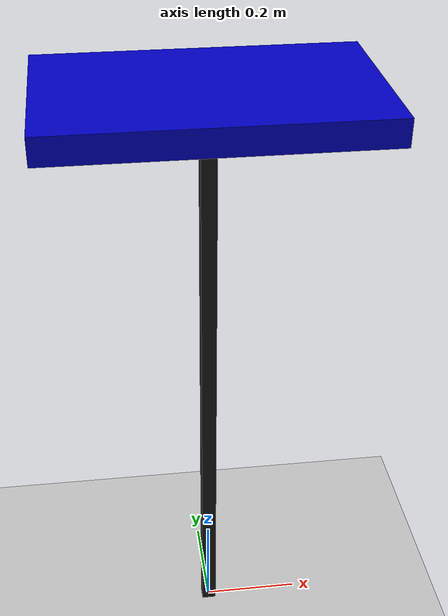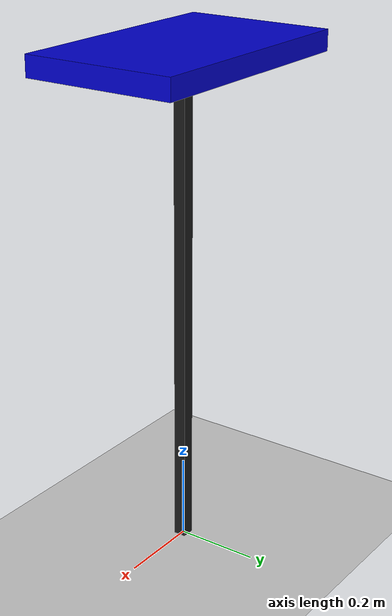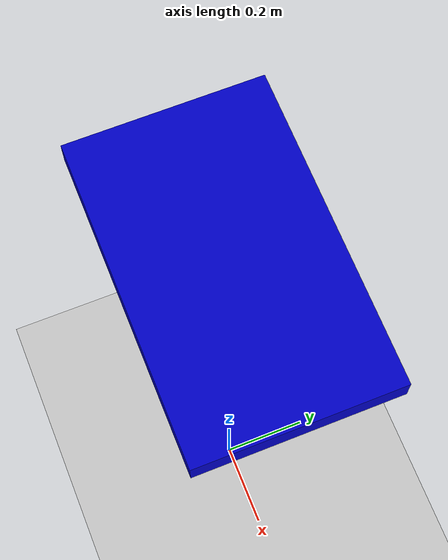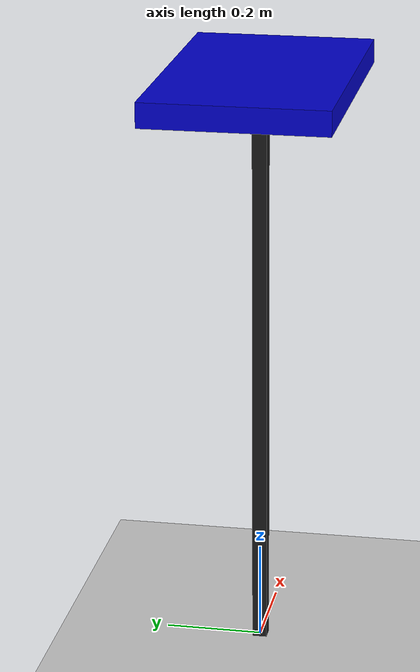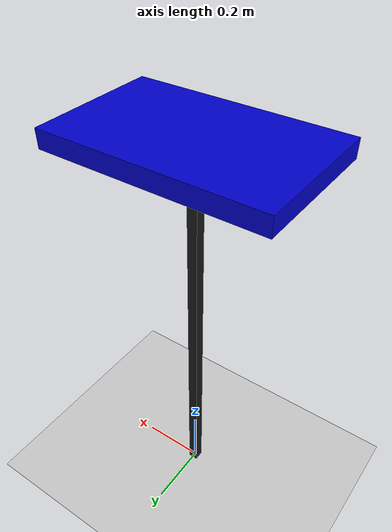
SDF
<?xml version="1.0" ?>
<!-- This is a simple rectangular model to test the buoyancy plugin -->
<sdf version="1.7">
    <world name="car_world">
        <scene>
            <!-- For turquoise ambient -->
            <ambient>0.0 1.0 1.0</ambient>
            <background>0.0 0.7 0.8</background>
        </scene>

        <physics name="1ms" type="ode">
            <max_step_size>0.001</max_step_size>
            <real_time_factor>1.0</real_time_factor>
        </physics>
        <plugin
            filename="libignition-gazebo-physics-system"
            name="ignition::gazebo::systems::Physics">
        </plugin>
        <plugin
            filename="libignition-gazebo-user-commands-system"
            name="ignition::gazebo::systems::UserCommands">
        </plugin>
        <plugin
            filename="libignition-gazebo-scene-broadcaster-system"
            name="ignition::gazebo::systems::SceneBroadcaster">
        </plugin>

        <light type="directional" name="sun">
            <cast_shadows>true</cast_shadows>
            <pose>0 0 10 0 0 0</pose>
            <diffuse>0.8 0.8 0.8 1</diffuse>
            <specular>0.2 0.2 0.2 1</specular>
            <attenuation>
                <range>1000</range>
                <constant>0.9</constant>
                <linear>0.01</linear>
                <quadratic>0.001</quadratic>
            </attenuation>
            <direction>-0.5 0.1 -0.9</direction>
        </light>

        <model name="ground_plane">
            <static>true</static>
            <link name="link">
                <collision name="collision">
                <geometry>
                    <plane>
                    <normal>0 0 1</normal>
                    </plane>
                </geometry>
                </collision>
                <visual name="visual">
                <geometry>
                    <plane>
                    <normal>0 0 1</normal>
                    <size>300 300</size>
                    </plane>
                </geometry>
                <material>
                    <ambient>0.8 0.8 0.8 1</ambient>
                    <diffuse>0.8 0.8 0.8 1</diffuse>
                    <specular>0.8 0.8 0.8 1</specular>
                </material>
                </visual>
            </link>
        </model>

        <model name='exp_rig'>
    	    <pose relative_to='world'>0 0 0 0 0 0</pose>

    	    <link name="blue_foam_base">
				<buoyancy>
					<fluid density="1000" />
					<volume>100</volume>
				</buoyancy>
                <pose relative_to='__model__'>0 0 1.2 0 0 0</pose>
                <inertial>
					<mass>1</mass>
					<inertia>
						<ixx>0.095329</ixx>
						<ixy>0</ixy>
						<ixz>0</ixz>
						<iyy>0.381317</iyy>
						<iyz>0</iyz>
						<izz>0.476646</izz>
					</inertia>
				</inertial>
				<visual name='visual'>
					<geometry>
						<box>
							<size>0.6 0.37 0.05</size>
						</box>
					</geometry>
					<material>
						<ambient>0.0 0.0 0.8 1</ambient>
						<diffuse>0.0 0.0 0.8 1</diffuse>
						<specular>0.0 0.0 0.8 1</specular>
					</material>
				</visual>
				<collision name='collision'>
					<geometry>
						<box>
							<size>0.6 0.37 0.05</size>
						</box>
					</geometry>
				</collision>
			</link>
			<link name="buoyant_link">
			<buoyancy>
				<fluid density="1000" />
				<volume>100</volume>
			</buoyancy>
		</link>

            <link name='vertical_metal_rod'>
				<pose relative_to="blue_foam_base">0 0 -0.6 0 0 0</pose>
				<inertial>
					<mass>5.764</mass>
					<inertia>
						<ixx>0.043333</ixx>
						<ixy>0</ixy>
						<ixz>0</ixz>
						<iyy>0.043333</iyy>
						<iyz>0</iyz>
						<izz>0.08</izz>
					</inertia>
				</inertial>
				<visual name='visual'>
					<geometry>
						<box>
							<size>0.03 0.03 1.2</size>
						</box>
					</geometry>
					<material>
						<ambient>0.1 0.1 0.1 1</ambient>
						<diffuse>0.1 0.1 0.1 1</diffuse>
						<specular>0.1 0.1 0.1 1</specular>
					</material>
				</visual>
				<collision name='collision'>
					<geometry>
						<box>
							<size>0.03 0.03 1.2</size>
						</box>
					</geometry>
				</collision>
	    	</link>

            <joint name='vertical_link_joint' type='fixed'>
    			<pose relative_to='vertical_metal_rod'/>
				<parent>blue_foam_base</parent>
    			<child>vertical_metal_rod</child>
			</joint>

            <plugin
                filename="ignition-gazebo-hydrodynamics-system"
                name="ignition::gazebo::systems::Hydrodynamics">
                <link_name>blue_foam_base</link_name>
                <xDotU>1.8686</xDotU>
                <yDotV>0</yDotV>
                <zDotW>0</zDotW>
                <kDotP>0</kDotP>
                <mDotQ>0</mDotQ>
                <nDotR>0</nDotR>
                <xUU>-0.002859</xUU>
                <xU>-1.024</xU>
                <yVV>0</yVV>
                <yV>0</yV>
                <zWW>0</zWW>
                <zW>0</zW>
                <kPP>0</kPP>
                <kP>0</kP>
                <mQQ>0</mQQ>
                <mQ>0</mQ>
                <nRR>0</nRR>
                <nR>0</nR>
            </plugin>

        </model>

		<plugin filename="libignition-gazebo-triggered-publisher-system.so"
				name="ignition::gazebo::systems::TriggeredPublisher">
			<input type="ignition.msgs.Int32" topic="/keyboard/keypress">
				<match field="data">16777235</match>
			</input>
			<output type="ignition.msgs.Twist" topic="/cmd_vel">
				linear: {x: 5.5}, angular: {z: 0.0}
			</output>
		</plugin>

		<!-- moving backwards -->
		<plugin filename="libignition-gazebo-triggered-publisher-system.so"
				name="ignition::gazebo::systems::TriggeredPublisher">
			<input type="ignition.msgs.Int32" topic="/keyboard/keypress">
				<match field="data">16777237</match>
			</input>
			<output type="ignition.msgs.Twist" topic="/cmd_vel">
				linear: {x: -5.5}, angular: {z: 0.0}
			</output>
		</plugin>

		<plugin filename="libignition-gazebo-triggered-publisher-system.so"
				name="ignition::gazebo::systems::TriggeredPublisher">
			<input type="ignition.msgs.Int32" topic="/keyboard/keypress">
				<match field="data">16777234</match>
			</input>
			<output type="ignition.msgs.Twist" topic="/cmd_vel">
				linear: {x: 0.0}, angular: {z: 0.5}
			</output>
		</plugin>

    </world>
</sdf>
